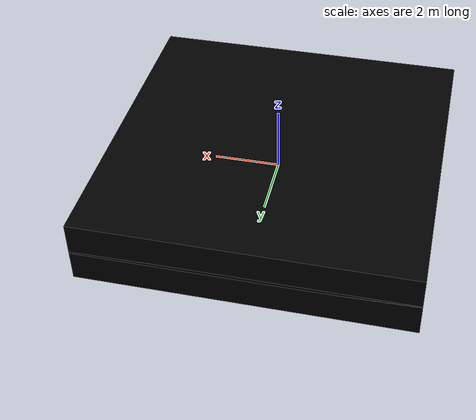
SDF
<?xml version="1.0"?>
<sdf version="1.6">
  <model name="icy_ramp">
    <link name="link">
      <!-- Flat Plane -->
      <visual name="flat_plane">
        <geometry>
          <box>
            <size>10 10 0.1</size>
          </box>
        </geometry>
        <material>
          <ambient>0 0 0 1</ambient>
          <diffuse>0 0 0 1</diffuse>
          <specular>0 0 0 1</specular>
          <emissive>0 0 0 1</emissive>
        </material>
        <pose>0 0 0 0 0 0</pose>
      </visual>

      <!-- Upward Slope -->
      <visual name="upward_slope">
        <geometry>
          <box>
            <size>10 10 2</size>
          </box>
        </geometry>
        <material>
          <ambient>0 0 0 1</ambient>
          <diffuse>0 0 0 1</diffuse>
          <specular>0 0 0 1</specular>
          <emissive>0 0 0 1</emissive>
        </material>
        <pose>0 0 0 0 0 0</pose> <!-- Adjust position and orientation -->
      </visual>

      <!-- Downward Slope -->
      <visual name="downward_slope">
        <geometry>
          <box>
            <size>10 10 2</size>
          </box>
        </geometry>
        <material>
          <ambient>0 0 0 1</ambient>
          <diffuse>0 0 0 1</diffuse>
          <specular>0 0 0 1</specular>
          <emissive>0 0 0 1</emissive>
        </material>
        <pose>0 0 0 0 0 0</pose> <!-- Adjust position and orientation -->
      </visual>
    </link>
  </model>
</sdf>
